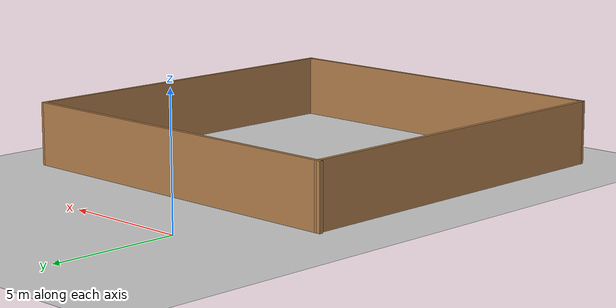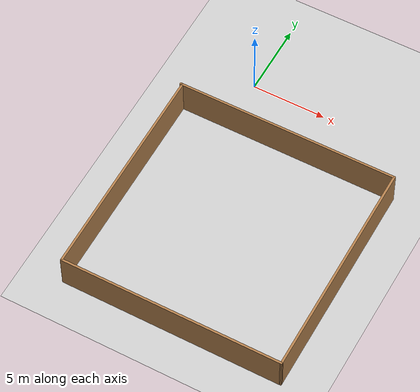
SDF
<sdf version="1.6">
 <world name="my_custom_world">
  <plugin name="gazebo_ros_factory" filename="libgazebo_ros_factory.so"/>
  <plugin name="gazebo_ros_init" filename="libgazebo_ros_init.so"/>
  <include><uri>model://ground_plane</uri></include>
  <include><uri>model://sun</uri></include>
  <include><uri>model://Room</uri></include>
 </world>
</sdf>

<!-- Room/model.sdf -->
<sdf version='1.7'>
  <model name='Room'>
    <pose>4.18074 -9.27887 0 0 -0 0</pose>
    <link name='Wall_2'>
      <collision name='Wall_2_Collision'>
        <geometry>
          <box>
            <size>14.998 0.15 2.5</size>
          </box>
        </geometry>
        <pose>0 0 1.25 0 -0 0</pose>
      </collision>
      <visual name='Wall_2_Visual'>
        <pose>0 0 1.25 0 -0 0</pose>
        <geometry>
          <box>
            <size>14.998 0.15 2.5</size>
          </box>
        </geometry>
        <material>
          <script>
            <uri>file://media/materials/scripts/gazebo.material</uri>
            <name>Gazebo/Wood</name>
          </script>
          <ambient>1 1 1 1</ambient>
        </material>
        <meta>
          <layer>0</layer>
        </meta>
      </visual>
      <pose>-0.075504 5.65293 0 0 -0 -8e-05</pose>
    </link>
    <link name='Wall_3'>
      <collision name='Wall_3_Collision'>
        <geometry>
          <box>
            <size>15.006 0.15 2.5</size>
          </box>
        </geometry>
        <pose>0 0 1.25 0 -0 0</pose>
      </collision>
      <visual name='Wall_3_Visual'>
        <pose>0 0 1.25 0 -0 0</pose>
        <geometry>
          <box>
            <size>15.006 0.15 2.5</size>
          </box>
        </geometry>
        <material>
          <script>
            <uri>file://media/materials/scripts/gazebo.material</uri>
            <name>Gazebo/Wood</name>
          </script>
          <ambient>1 1 1 1</ambient>
        </material>
        <meta>
          <layer>0</layer>
        </meta>
      </visual>
      <pose>7.47634 -1.77565 0 0 -0 -1.56771</pose>
    </link>
    <link name='Wall_4'>
      <collision name='Wall_4_Collision'>
        <geometry>
          <box>
            <size>14.9978 0.15 2.5</size>
          </box>
        </geometry>
        <pose>0 0 1.25 0 -0 0</pose>
      </collision>
      <visual name='Wall_4_Visual'>
        <pose>0 0 1.25 0 -0 0</pose>
        <geometry>
          <box>
            <size>14.9978 0.15 2.5</size>
          </box>
        </geometry>
        <material>
          <script>
            <uri>file://media/materials/scripts/gazebo.material</uri>
            <name>Gazebo/Wood</name>
          </script>
          <ambient>1 1 1 1</ambient>
        </material>
        <meta>
          <layer>0</layer>
        </meta>
      </visual>
      <pose>0.075366 -9.19787 0 0 -0 3.14081</pose>
    </link>
    <link name='Wall_5'>
      <collision name='Wall_5_Collision'>
        <geometry>
          <box>
            <size>14.9257 0.15 2.5</size>
          </box>
        </geometry>
        <pose>0 0 1.25 0 -0 0</pose>
      </collision>
      <visual name='Wall_5_Visual'>
        <pose>0 0 1.25 0 -0 0</pose>
        <geometry>
          <box>
            <size>14.9257 0.15 2.5</size>
          </box>
        </geometry>
        <material>
          <script>
            <uri>file://media/materials/scripts/gazebo.material</uri>
            <name>Gazebo/Wood</name>
          </script>
          <ambient>1 1 1 1</ambient>
        </material>
        <meta>
          <layer>0</layer>
        </meta>
      </visual>
      <pose>-7.37154 -1.73431 0 0 -0 1.57391</pose>
    </link>

    <static>1</static>
  </model>
</sdf>
